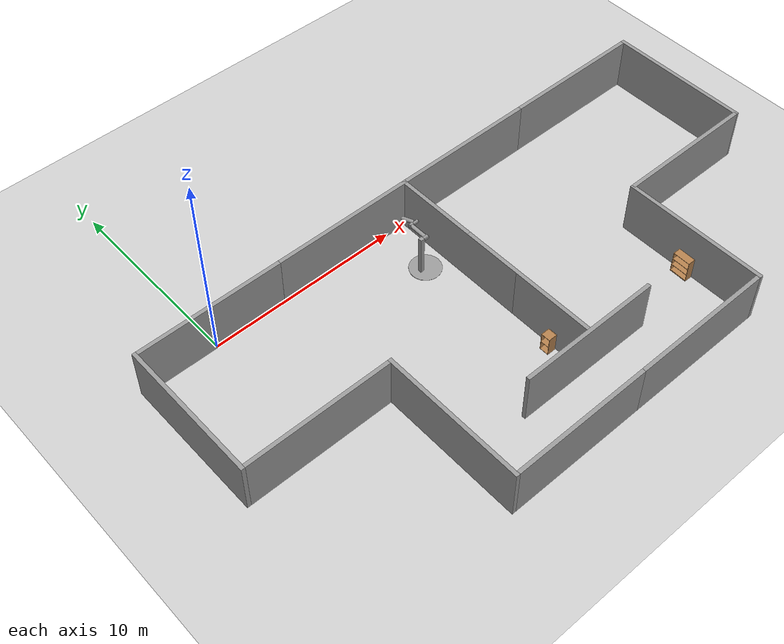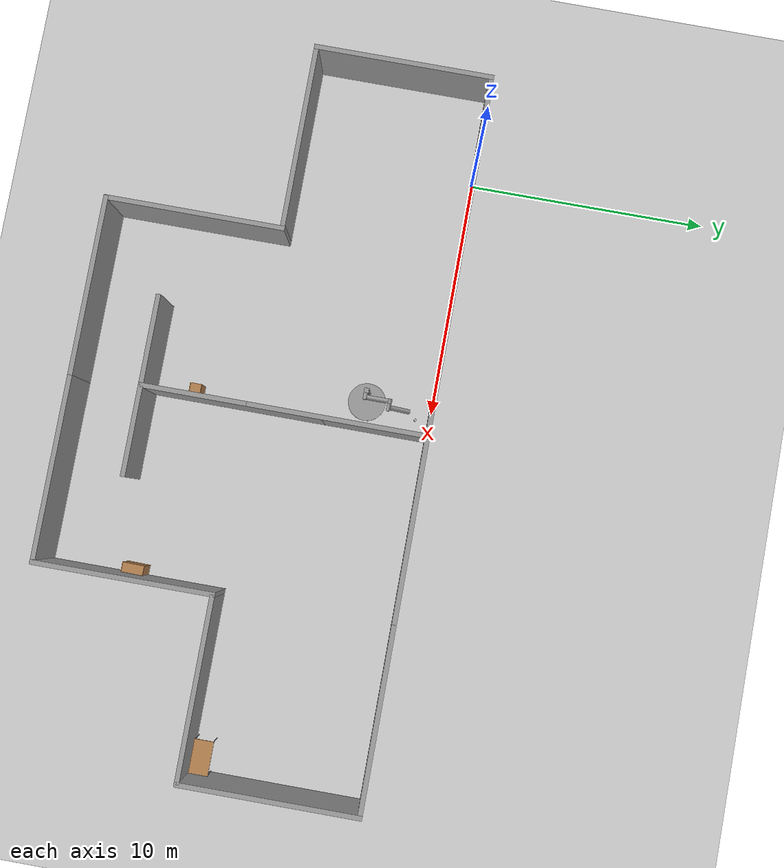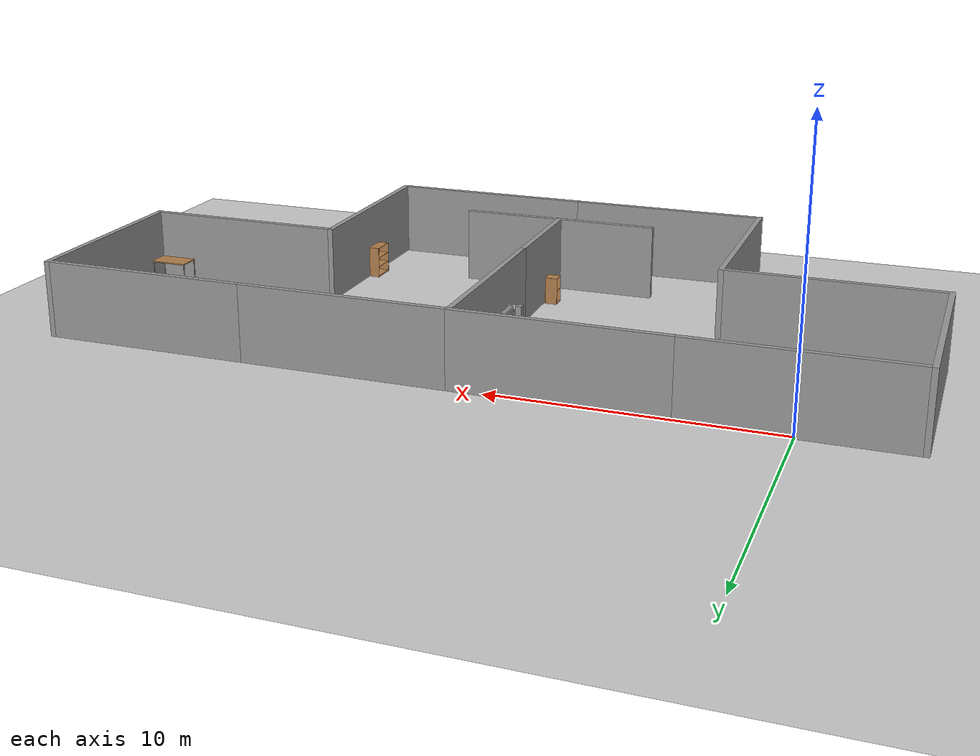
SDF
<sdf version="1.6">
 <world name="default">
  <light name="sun" type="directional">
   <pose>0 0 10 0 -0 0</pose>
   <diffuse>0.8 0.8 0.8 1</diffuse>
   <specular>0.1 0.1 0.1 1</specular>
   <attenuation>
    <range>1000</range>
    <constant>0.9</constant>
    <linear>0.01</linear>
    <quadratic>0.001</quadratic>
   </attenuation>
   <direction>-0.5 0.5 -1</direction>
  </light>
  <model name="ground_plane">
   <static>1</static>
   <link name="link">
    <collision name="collision">
     <geometry><plane><normal>0 0 1</normal><size>100 100</size></plane></geometry>
     <surface><friction><ode><mu>100</mu><mu2>50</mu2></ode></friction></surface>
    </collision>
    <visual name="visual">
     <cast_shadows>0</cast_shadows>
     <geometry><plane><normal>0 0 1</normal><size>100 100</size></plane></geometry>
     <material>
      <script><uri>file://media/materials/scripts/gazebo.material</uri><name>Gazebo/Grey</name></script>
     </material>
    </visual>
   </link>
  </model>
  <gravity>0 0 -9.8</gravity>
  <magnetic_field>6e-06 2.3e-05 -4.2e-05</magnetic_field>
  <atmosphere type="adiabatic"/>
  <physics name="default_physics" default="0" type="ode">
   <max_step_size>0.001</max_step_size>
   <real_time_factor>1</real_time_factor>
   <real_time_update_rate>1000</real_time_update_rate>
  </physics>
  <scene><ambient>0.4 0.4 0.4 1</ambient><background>0.7 0.7 0.7 1</background><shadows>1</shadows></scene>
  <spherical_coordinates>
   <surface_model>EARTH_WGS84</surface_model>
   <latitude_deg>0</latitude_deg>
   <longitude_deg>0</longitude_deg>
   <elevation>0</elevation>
   <heading_deg>0</heading_deg>
  </spherical_coordinates>
  <model name="grey_wall">
   <static>1</static>
   <link name="link">
    <pose>0 0 1.4 0 -0 0</pose>
    <collision name="collision"><geometry><box><size>7.5 0.2 2.8</size></box></geometry></collision>
    <visual name="visual">
     <cast_shadows>0</cast_shadows>
     <geometry><box><size>7.5 0.2 2.8</size></box></geometry>
     <material>
      <script>
       <uri>model://grey_wall/materials/scripts</uri>
       <uri>model://grey_wall/materials/textures</uri>
       <name>vrc/grey_wall</name>
      </script>
     </material>
    </visual>
   </link>
  </model>
  <model name="grey_wall_0">
   <static>1</static>
   <link name="link">
    <pose>0 0 1.4 0 -0 0</pose>
    <collision name="collision"><geometry><box><size>7.5 0.2 2.8</size></box></geometry></collision>
    <visual name="visual">
     <cast_shadows>0</cast_shadows>
     <geometry><box><size>7.5 0.2 2.8</size></box></geometry>
     <material>
      <script>
       <uri>model://grey_wall/materials/scripts</uri>
       <uri>model://grey_wall/materials/textures</uri>
       <name>vrc/grey_wall</name>
      </script>
     </material>
    </visual>
   </link>
   <pose>-3.85002 -3.65 0 0 0 -1.57079</pose>
  </model>
  <model name="grey_wall_1">
   <static>1</static>
   <link name="link">
    <pose>0 0 1.4 0 -0 0</pose>
    <collision name="collision"><geometry><box><size>7.5 0.2 2.8</size></box></geometry></collision>
    <visual name="visual">
     <cast_shadows>0</cast_shadows>
     <geometry><box><size>7.5 0.2 2.8</size></box></geometry>
     <material>
      <script>
       <uri>model://grey_wall/materials/scripts</uri>
       <uri>model://grey_wall/materials/textures</uri>
       <name>vrc/grey_wall</name>
      </script>
     </material>
    </visual>
   </link>
   <pose>0 -7.3 0 0 -0 0</pose>
  </model>
  <model name="grey_wall_2">
   <static>1</static>
   <link name="link">
    <pose>0 0 1.4 0 -0 0</pose>
    <collision name="collision"><geometry><box><size>7.5 0.2 2.8</size></box></geometry></collision>
    <visual name="visual">
     <cast_shadows>0</cast_shadows>
     <geometry><box><size>7.5 0.2 2.8</size></box></geometry>
     <material>
      <script>
       <uri>model://grey_wall/materials/scripts</uri>
       <uri>model://grey_wall/materials/textures</uri>
       <name>vrc/grey_wall</name>
      </script>
     </material>
    </visual>
   </link>
   <pose>7.5 0 0 0 -0 0</pose>
  </model>
  <model name="grey_wall_2_clone">
   <static>1</static>
   <link name="link">
    <pose>0 0 1.4 0 -0 0</pose>
    <collision name="collision"><geometry><box><size>7.5 0.2 2.8</size></box></geometry></collision>
    <visual name="visual">
     <cast_shadows>0</cast_shadows>
     <geometry><box><size>7.5 0.2 2.8</size></box></geometry>
     <material>
      <script>
       <uri>model://grey_wall/materials/scripts</uri>
       <uri>model://grey_wall/materials/textures</uri>
       <name>vrc/grey_wall</name>
      </script>
     </material>
    </visual>
   </link>
   <pose>3.85002 -10.95 0 0 -0 1.57079</pose>
  </model>
  <model name="grey_wall_4">
   <static>1</static>
   <link name="link">
    <pose>0 0 1.4 0 -0 0</pose>
    <collision name="collision"><geometry><box><size>7.5 0.2 2.8</size></box></geometry></collision>
    <visual name="visual">
     <cast_shadows>0</cast_shadows>
     <geometry><box><size>7.5 0.2 2.8</size></box></geometry>
     <material>
      <script>
       <uri>model://grey_wall/materials/scripts</uri>
       <uri>model://grey_wall/materials/textures</uri>
       <name>vrc/grey_wall</name>
      </script>
     </material>
    </visual>
   </link>
   <pose>7.5 -14.6 0 0 -0 0</pose>
  </model>
  <model name="grey_wall_5">
   <static>1</static>
   <link name="link">
    <pose>0 0 1.4 0 -0 0</pose>
    <collision name="collision"><geometry><box><size>7.5 0.2 2.8</size></box></geometry></collision>
    <visual name="visual">
     <cast_shadows>0</cast_shadows>
     <geometry><box><size>7.5 0.2 2.8</size></box></geometry>
     <material>
      <script>
       <uri>model://grey_wall/materials/scripts</uri>
       <uri>model://grey_wall/materials/textures</uri>
       <name>vrc/grey_wall</name>
      </script>
     </material>
    </visual>
   </link>
   <pose>15 -14.6 0 0 -0 0</pose>
  </model>
  <model name="grey_wall_6">
   <static>1</static>
   <link name="link">
    <pose>0 0 1.4 0 -0 0</pose>
    <collision name="collision"><geometry><box><size>7.5 0.2 2.8</size></box></geometry></collision>
    <visual name="visual">
     <cast_shadows>0</cast_shadows>
     <geometry><box><size>7.5 0.2 2.8</size></box></geometry>
     <material>
      <script>
       <uri>model://grey_wall/materials/scripts</uri>
       <uri>model://grey_wall/materials/textures</uri>
       <name>vrc/grey_wall</name>
      </script>
     </material>
    </visual>
   </link>
   <pose>11.1458 -3.65011 0 0 -0 1.57079</pose>
  </model>
  <model name="grey_wall_7">
   <static>1</static>
   <link name="link">
    <pose>0 0 1.4 0 -0 0</pose>
    <collision name="collision"><geometry><box><size>7.5 0.2 2.8</size></box></geometry></collision>
    <visual name="visual">
     <cast_shadows>0</cast_shadows>
     <geometry><box><size>7.5 0.2 2.8</size></box></geometry>
     <material>
      <script>
       <uri>model://grey_wall/materials/scripts</uri>
       <uri>model://grey_wall/materials/textures</uri>
       <name>vrc/grey_wall</name>
      </script>
     </material>
    </visual>
   </link>
   <pose>15 0 0 0 -0 0</pose>
  </model>
  <model name="grey_wall_5_clone">
   <static>1</static>
   <link name="link">
    <pose>0 0 1.4 0 -0 0</pose>
    <collision name="collision"><geometry><box><size>7.5 0.2 2.8</size></box></geometry></collision>
    <visual name="visual">
     <cast_shadows>0</cast_shadows>
     <geometry><box><size>7.5 0.2 2.8</size></box></geometry>
     <material>
      <script>
       <uri>model://grey_wall/materials/scripts</uri>
       <uri>model://grey_wall/materials/textures</uri>
       <name>vrc/grey_wall</name>
      </script>
     </material>
    </visual>
   </link>
   <pose>22.606 -7.30022 0 0 -0 0</pose>
  </model>
  <model name="grey_wall_5_clone_clone">
   <static>1</static>
   <link name="link">
    <pose>0 0 1.4 0 -0 0</pose>
    <collision name="collision"><geometry><box><size>7.5 0.2 2.8</size></box></geometry></collision>
    <visual name="visual">
     <cast_shadows>0</cast_shadows>
     <geometry><box><size>7.5 0.2 2.8</size></box></geometry>
     <material>
      <script>
       <uri>model://grey_wall/materials/scripts</uri>
       <uri>model://grey_wall/materials/textures</uri>
       <name>vrc/grey_wall</name>
      </script>
     </material>
    </visual>
   </link>
   <pose>22.5 0 0 0 -0 0</pose>
  </model>
  <model name="grey_wall_6_clone">
   <static>1</static>
   <link name="link">
    <pose>0 0 1.4 0 -0 0</pose>
    <collision name="collision"><geometry><box><size>7.5 0.2 2.8</size></box></geometry></collision>
    <visual name="visual">
     <cast_shadows>0</cast_shadows>
     <geometry><box><size>7.5 0.2 2.8</size></box></geometry>
     <material>
      <script>
       <uri>model://grey_wall/materials/scripts</uri>
       <uri>model://grey_wall/materials/textures</uri>
       <name>vrc/grey_wall</name>
      </script>
     </material>
    </visual>
   </link>
   <pose>18.8542 -10.9499 0 0 -0 1.57191</pose>
  </model>
  <model name="grey_wall_6_clone_0">
   <static>1</static>
   <link name="link">
    <pose>0 0 1.4 0 -0 0</pose>
    <collision name="collision"><geometry><box><size>7.5 0.2 2.8</size></box></geometry></collision>
    <visual name="visual">
     <cast_shadows>0</cast_shadows>
     <geometry><box><size>7.5 0.2 2.8</size></box></geometry>
     <material>
      <script>
       <uri>model://grey_wall/materials/scripts</uri>
       <uri>model://grey_wall/materials/textures</uri>
       <name>vrc/grey_wall</name>
      </script>
     </material>
    </visual>
   </link>
   <pose>26.3542 -3.65011 0 0 -0 1.57191</pose>
  </model>
  <model name="grey_wall_6_clone_0_clone">
   <static>1</static>
   <link name="link">
    <pose>0 0 1.4 0 -0 0</pose>
    <collision name="collision"><geometry><box><size>7.5 0.2 2.8</size></box></geometry></collision>
    <visual name="visual">
     <cast_shadows>0</cast_shadows>
     <geometry><box><size>7.5 0.2 2.8</size></box></geometry>
     <material>
      <script>
       <uri>model://grey_wall/materials/scripts</uri>
       <uri>model://grey_wall/materials/textures</uri>
       <name>vrc/grey_wall</name>
      </script>
     </material>
    </visual>
   </link>
   <pose>11.1458 -8.07245 0 0 -0 1.57079</pose>
  </model>
  <model name="grey_wall_5_clone_0">
   <static>1</static>
   <link name="link">
    <pose>0 0 1.4 0 -0 0</pose>
    <collision name="collision"><geometry><box><size>7.5 0.2 2.8</size></box></geometry></collision>
    <visual name="visual">
     <cast_shadows>0</cast_shadows>
     <geometry><box><size>7.5 0.2 2.8</size></box></geometry>
     <material>
      <script>
       <uri>model://grey_wall/materials/scripts</uri>
       <uri>model://grey_wall/materials/textures</uri>
       <name>vrc/grey_wall</name>
      </script>
     </material>
    </visual>
   </link>
   <pose>11.1458 -11.7225 0 0 -0 0</pose>
  </model>
  <model name="beer">
   <link name="link">
    <pose>0 0 0.115 0 -0 0</pose>
    <inertial>
     <mass>0.39</mass>
     <inertia><ixx>0.00058</ixx><ixy>0</ixy><ixz>0</ixz><iyy>0.00058</iyy><iyz>0</iyz><izz>0.00019</izz></inertia>
    </inertial>
    <collision name="collision">
     <geometry><cylinder><radius>0.055</radius><length>0.23</length></cylinder></geometry>
    </collision>
    <visual name="visual">
     <geometry><cylinder><radius>0.055</radius><length>0.23</length></cylinder></geometry>
     <material>
      <script>
       <uri>model://beer/materials/scripts</uri>
       <uri>model://beer/materials/textures</uri>
       <name>Beer/Diffuse</name>
      </script>
     </material>
    </visual>
   </link>
   <pose>10.4392 -0.618118 0.7747 0 -0 0</pose>
  </model>
  <model name="cabinet">
   <static>1</static>
   <link name="cabinet_bottom_plate">
    <inertial>
     <pose>0 0 -1 0 -0 0</pose>
     <inertia><ixx>2.05</ixx><ixy>0</ixy><ixz>0</ixz><iyy>2.05</iyy><iyz>0</iyz><izz>2.05</izz></inertia>
     <mass>25</mass>
    </inertial>
    <collision name="cabinet_bottom_plate_geom">
     <pose>0 0 0.01 0 -0 0</pose>
     <geometry><box><size>0.45 0.45 0.02</size></box></geometry>
    </collision>
    <visual name="cabinet_bottom_plate_geom_visual">
     <pose>0 0 0.01 0 -0 0</pose>
     <geometry><box><size>0.45 0.45 0.02</size></box></geometry>
     <material>
      <script><uri>file://media/materials/scripts/gazebo.material</uri><name>Gazebo/Wood</name></script>
     </material>
    </visual>
    <collision name="cabinet_bottom_plate_geom_cabinet_back_plate">
     <pose>0.235 0 0.51 0 -0 0</pose>
     <geometry><box><size>0.02 0.45 1.02</size></box></geometry>
    </collision>
    <visual name="cabinet_bottom_plate_geom_cabinet_back_plate_visual">
     <pose>0.235 0 0.51 0 -0 0</pose>
     <geometry><box><size>0.02 0.45 1.02</size></box></geometry>
     <material>
      <script><uri>file://media/materials/scripts/gazebo.material</uri><name>Gazebo/Wood</name></script>
     </material>
    </visual>
    <collision name="cabinet_bottom_plate_geom_cabinet_left_plate">
     <pose>0 0.235 0.51 0 -0 0</pose>
     <geometry><box><size>0.45 0.02 1.02</size></box></geometry>
    </collision>
    <visual name="cabinet_bottom_plate_geom_cabinet_left_plate_visual">
     <pose>0 0.235 0.51 0 -0 0</pose>
     <geometry><box><size>0.45 0.02 1.02</size></box></geometry>
     <material>
      <script><uri>file://media/materials/scripts/gazebo.material</uri><name>Gazebo/Wood</name></script>
     </material>
    </visual>
    <collision name="cabinet_bottom_plate_geom_cabinet_middle_plate">
     <pose>0 0 0.51 0 -0 0</pose>
     <geometry><box><size>0.45 0.45 0.02</size></box></geometry>
    </collision>
    <visual name="cabinet_bottom_plate_geom_cabinet_middle_plate_visual">
     <pose>0 0 0.51 0 -0 0</pose>
     <geometry><box><size>0.45 0.45 0.02</size></box></geometry>
     <material>
      <script><uri>file://media/materials/scripts/gazebo.material</uri><name>Gazebo/Wood</name></script>
     </material>
    </visual>
    <collision name="cabinet_bottom_plate_geom_cabinet_right_plate">
     <pose>0 -0.235 0.51 0 -0 0</pose>
     <geometry><box><size>0.45 0.02 1.02</size></box></geometry>
    </collision>
    <visual name="cabinet_bottom_plate_geom_cabinet_right_plate_visual">
     <pose>0 -0.235 0.51 0 -0 0</pose>
     <geometry><box><size>0.45 0.02 1.02</size></box></geometry>
     <material>
      <script><uri>file://media/materials/scripts/gazebo.material</uri><name>Gazebo/Wood</name></script>
     </material>
    </visual>
    <collision name="cabinet_bottom_plate_geom_cabinet_top_plate">
     <pose>0 0 1.01 0 -0 0</pose>
     <geometry><box><size>0.45 0.45 0.02</size></box></geometry>
    </collision>
    <visual name="cabinet_bottom_plate_geom_cabinet_top_plate_visual">
     <pose>0 0 1.01 0 -0 0</pose>
     <geometry><box><size>0.45 0.45 0.02</size></box></geometry>
     <material>
      <script><uri>file://media/materials/scripts/gazebo.material</uri><name>Gazebo/Wood</name></script>
     </material>
    </visual>
   </link>
   <pose>10.7739 -9.86714 0 0 -0 0</pose>
  </model>
  <model name="bookshelf">
   <static>1</static>
   <link name="link">
    <inertial><mass>1</mass></inertial>
    <collision name="back">
     <pose>0 0.005 0.6 0 -0 0</pose>
     <geometry><box><size>0.9 0.01 1.2</size></box></geometry>
    </collision>
    <visual name="visual1">
     <pose>0 0.005 0.6 0 -0 0</pose>
     <geometry><box><size>0.9 0.01 1.2</size></box></geometry>
     <material>
      <script><uri>file://media/materials/scripts/gazebo.material</uri><name>Gazebo/Wood</name></script>
     </material>
    </visual>
    <collision name="left_side">
     <pose>0.45 -0.195 0.6 0 -0 0</pose>
     <geometry><box><size>0.02 0.4 1.2</size></box></geometry>
    </collision>
    <visual name="visual2">
     <pose>0.45 -0.195 0.6 0 -0 0</pose>
     <geometry><box><size>0.02 0.4 1.2</size></box></geometry>
     <material>
      <script><uri>file://media/materials/scripts/gazebo.material</uri><name>Gazebo/Wood</name></script>
     </material>
    </visual>
    <collision name="right_side">
     <pose>-0.45 -0.195 0.6 0 -0 0</pose>
     <geometry><box><size>0.02 0.4 1.2</size></box></geometry>
    </collision>
    <visual name="visual3">
     <pose>-0.45 -0.195 0.6 0 -0 0</pose>
     <geometry><box><size>0.02 0.4 1.2</size></box></geometry>
     <material>
      <script><uri>file://media/materials/scripts/gazebo.material</uri><name>Gazebo/Wood</name></script>
     </material>
    </visual>
    <collision name="bottom">
     <pose>0 -0.195 0.03 0 -0 0</pose>
     <geometry><box><size>0.88 0.4 0.06</size></box></geometry>
    </collision>
    <visual name="visual4">
     <pose>0 -0.195 0.03 0 -0 0</pose>
     <geometry><box><size>0.88 0.4 0.06</size></box></geometry>
     <material>
      <script><uri>file://media/materials/scripts/gazebo.material</uri><name>Gazebo/Wood</name></script>
     </material>
    </visual>
    <collision name="top">
     <pose>0 -0.195 1.19 0 -0 0</pose>
     <geometry><box><size>0.88 0.4 0.02</size></box></geometry>
    </collision>
    <visual name="visual5">
     <pose>0 -0.195 1.19 0 -0 0</pose>
     <geometry><box><size>0.88 0.4 0.02</size></box></geometry>
     <material>
      <script><uri>file://media/materials/scripts/gazebo.material</uri><name>Gazebo/Wood</name></script>
     </material>
    </visual>
    <collision name="low_shelf">
     <pose>0 -0.195 0.43 0 -0 0</pose>
     <geometry><box><size>0.88 0.4 0.02</size></box></geometry>
    </collision>
    <visual name="visual6">
     <pose>0 -0.195 0.43 0 -0 0</pose>
     <geometry><box><size>0.88 0.4 0.02</size></box></geometry>
     <material>
      <script><uri>file://media/materials/scripts/gazebo.material</uri><name>Gazebo/Wood</name></script>
     </material>
    </visual>
    <collision name="high_shelf">
     <pose>0 -0.195 0.8 0 -0 0</pose>
     <geometry><box><size>0.88 0.4 0.02</size></box></geometry>
    </collision>
    <visual name="visual7">
     <pose>0 -0.195 0.8 0 -0 0</pose>
     <geometry><box><size>0.88 0.4 0.02</size></box></geometry>
     <material>
      <script><uri>file://media/materials/scripts/gazebo.material</uri><name>Gazebo/Wood</name></script>
     </material>
    </visual>
   </link>
   <pose>18.7309 -10.9537 0 0 0 -1.59064</pose>
  </model>
  <model name="table">
   <static>0</static>
   <link name="link">
    <collision name="surface">
     <pose>0 0 1 0 -0 0</pose>
     <geometry><box><size>1.5 0.8 0.03</size></box></geometry>
     <surface><friction><ode><mu>0.6</mu><mu2>0.6</mu2></ode></friction></surface>
    </collision>
    <visual name="visual1">
     <pose>0 0 1 0 -0 0</pose>
     <geometry><box><size>1.4 0.8 0.04</size></box></geometry>
     <material>
      <script><uri>file://media/materials/scripts/gazebo.material</uri><name>Gazebo/Wood</name></script>
     </material>
    </visual>
    <collision name="front_left_leg">
     <pose>0.68 0.38 0.5 0 -0 0</pose>
     <geometry><cylinder><radius>0.02</radius><length>1</length></cylinder></geometry>
    </collision>
    <visual name="front_left_leg">
     <pose>0.68 0.38 0.5 0 -0 0</pose>
     <geometry><cylinder><radius>0.02</radius><length>1</length></cylinder></geometry>
     <material>
      <script><uri>file://media/materials/scripts/gazebo.material</uri><name>Gazebo/Grey</name></script>
     </material>
    </visual>
    <collision name="front_right_leg">
     <pose>0.68 -0.38 0.5 0 -0 0</pose>
     <geometry><cylinder><radius>0.02</radius><length>1</length></cylinder></geometry>
    </collision>
    <visual name="front_right_leg">
     <pose>0.68 -0.38 0.5 0 -0 0</pose>
     <geometry><cylinder><radius>0.02</radius><length>1</length></cylinder></geometry>
     <material>
      <script><uri>file://media/materials/scripts/gazebo.material</uri><name>Gazebo/Grey</name></script>
     </material>
    </visual>
    <collision name="back_right_leg">
     <pose>-0.68 -0.38 0.5 0 -0 0</pose>
     <geometry><cylinder><radius>0.02</radius><length>1</length></cylinder></geometry>
    </collision>
    <visual name="back_right_leg">
     <pose>-0.68 -0.38 0.5 0 -0 0</pose>
     <geometry><cylinder><radius>0.02</radius><length>1</length></cylinder></geometry>
     <material>
      <script><uri>file://media/materials/scripts/gazebo.material</uri><name>Gazebo/Grey</name></script>
     </material>
    </visual>
    <collision name="back_left_leg">
     <pose>-0.68 0.38 0.5 0 -0 0</pose>
     <geometry><cylinder><radius>0.02</radius><length>1</length></cylinder></geometry>
    </collision>
    <visual name="back_left_leg">
     <pose>-0.68 0.38 0.5 0 -0 0</pose>
     <geometry><cylinder><radius>0.02</radius><length>1</length></cylinder></geometry>
     <material>
      <script><uri>file://media/materials/scripts/gazebo.material</uri><name>Gazebo/Grey</name></script>
     </material>
    </visual>
    <inertial>
     <inertia><ixx>1</ixx><ixy>0</ixy><ixz>0</ixz><iyy>1</iyy><iyz>0</iyz><izz>1</izz></inertia>
     <mass>1</mass>
    </inertial>
   </link>
   <pose>25.5438 -6.76484 0 0 -0 0</pose>
  </model>
  <model name="double_pendulum_with_base">
   <link name="base">
    <inertial>
     <mass>100</mass>
     <inertia><ixx>1</ixx><ixy>0</ixy><ixz>0</ixz><iyy>1</iyy><iyz>0</iyz><izz>1</izz></inertia>
    </inertial>
    <visual name="vis_plate_on_ground">
     <pose>0 0 0.01 0 -0 0</pose>
     <geometry><cylinder><radius>0.8</radius><length>0.02</length></cylinder></geometry>
     <material>
      <script><uri>file://media/materials/scripts/gazebo.material</uri><name>Gazebo/Grey</name></script>
     </material>
    </visual>
    <visual name="vis_pole">
     <pose>-0.275 0 1.1 0 -0 0</pose>
     <geometry><box><size>0.2 0.2 2.2</size></box></geometry>
     <material>
      <script><uri>file://media/materials/scripts/gazebo.material</uri><name>Gazebo/Grey</name></script>
     </material>
    </visual>
    <collision name="col_plate_on_ground">
     <pose>0 0 0.01 0 -0 0</pose>
     <geometry><cylinder><radius>0.8</radius><length>0.02</length></cylinder></geometry>
    </collision>
    <collision name="col_pole">
     <pose>-0.275 0 1.1 0 -0 0</pose>
     <geometry><box><size>0.2 0.2 2.2</size></box></geometry>
    </collision>
   </link>
   <link name="upper_link">
    <pose>0 0 2.1 -1.5708 0 0</pose>
    <inertial>
     <pose>0 0 0.5 0 -0 0</pose>
     <inertia><ixx>1</ixx><ixy>0</ixy><ixz>0</ixz><iyy>1</iyy><iyz>0</iyz><izz>1</izz></inertia>
     <mass>1</mass>
    </inertial>
    <visual name="vis_upper_joint">
     <pose>-0.05 0 0 3.14159 1.57079 3.14159</pose>
     <geometry><cylinder><radius>0.1</radius><length>0.3</length></cylinder></geometry>
     <material>
      <script><uri>file://media/materials/scripts/gazebo.material</uri><name>Gazebo/Grey</name></script>
     </material>
    </visual>
    <visual name="vis_lower_joint">
     <pose>0 0 1 3.14159 1.57079 3.14159</pose>
     <geometry><cylinder><radius>0.1</radius><length>0.2</length></cylinder></geometry>
     <material>
      <script><uri>file://media/materials/scripts/gazebo.material</uri><name>Gazebo/Grey</name></script>
     </material>
    </visual>
    <visual name="vis_cylinder">
     <pose>0 0 0.5 0 -0 0</pose>
     <geometry><cylinder><radius>0.1</radius><length>0.9</length></cylinder></geometry>
     <material>
      <script><uri>file://media/materials/scripts/gazebo.material</uri><name>Gazebo/Grey</name></script>
     </material>
    </visual>
    <collision name="col_upper_joint">
     <pose>-0.05 0 0 3.14159 1.57079 3.14159</pose>
     <geometry><cylinder><radius>0.1</radius><length>0.3</length></cylinder></geometry>
    </collision>
    <collision name="col_lower_joint">
     <pose>0 0 1 3.14159 1.57079 3.14159</pose>
     <geometry><cylinder><radius>0.1</radius><length>0.2</length></cylinder></geometry>
    </collision>
    <collision name="col_cylinder">
     <pose>0 0 0.5 0 -0 0</pose>
     <geometry><cylinder><radius>0.1</radius><length>0.9</length></cylinder></geometry>
    </collision>
   </link>
   <link name="lower_link">
    <pose>0.25 1 2.1 -2 0 0</pose>
    <inertial>
     <pose>0 0 0.5 0 -0 0</pose>
     <inertia><ixx>1</ixx><ixy>0</ixy><ixz>0</ixz><iyy>1</iyy><iyz>0</iyz><izz>1</izz></inertia>
     <mass>1</mass>
    </inertial>
    <visual name="vis_lower_joint">
     <pose>0 0 0 3.14159 1.57079 3.14159</pose>
     <geometry><cylinder><radius>0.08</radius><length>0.3</length></cylinder></geometry>
     <material>
      <script><uri>file://media/materials/scripts/gazebo.material</uri><name>Gazebo/Grey</name></script>
     </material>
    </visual>
    <visual name="vis_cylinder">
     <pose>0 0 0.5 0 -0 0</pose>
     <geometry><cylinder><radius>0.1</radius><length>0.9</length></cylinder></geometry>
     <material>
      <script><uri>file://media/materials/scripts/gazebo.material</uri><name>Gazebo/Grey</name></script>
     </material>
    </visual>
    <collision name="col_lower_joint">
     <pose>0 0 0 3.14159 1.57079 3.14159</pose>
     <geometry><cylinder><radius>0.08</radius><length>0.3</length></cylinder></geometry>
    </collision>
    <collision name="col_cylinder">
     <pose>0 0 0.5 0 -0 0</pose>
     <geometry><cylinder><radius>0.1</radius><length>0.9</length></cylinder></geometry>
    </collision>
   </link>
   <joint name="upper_joint" type="revolute">
    <parent>base</parent>
    <child>upper_link</child>
    <axis>
     <xyz>1 0 0</xyz>
     <use_parent_model_frame>1</use_parent_model_frame>
     <limit><lower>-1e+16</lower><upper>1e+16</upper></limit>
     <dynamics><spring_reference>0</spring_reference><spring_stiffness>0</spring_stiffness></dynamics>
    </axis>
   </joint>
   <joint name="lower_joint" type="revolute">
    <parent>upper_link</parent>
    <child>lower_link</child>
    <axis>
     <xyz>1 0 0</xyz>
     <use_parent_model_frame>1</use_parent_model_frame>
     <limit><lower>-1e+16</lower><upper>1e+16</upper></limit>
     <dynamics><spring_reference>0</spring_reference><spring_stiffness>0</spring_stiffness></dynamics>
    </axis>
   </joint>
   <pose>9.9717 -2.77155 0 0 -0 0</pose>
  </model>
 </world>
</sdf>
